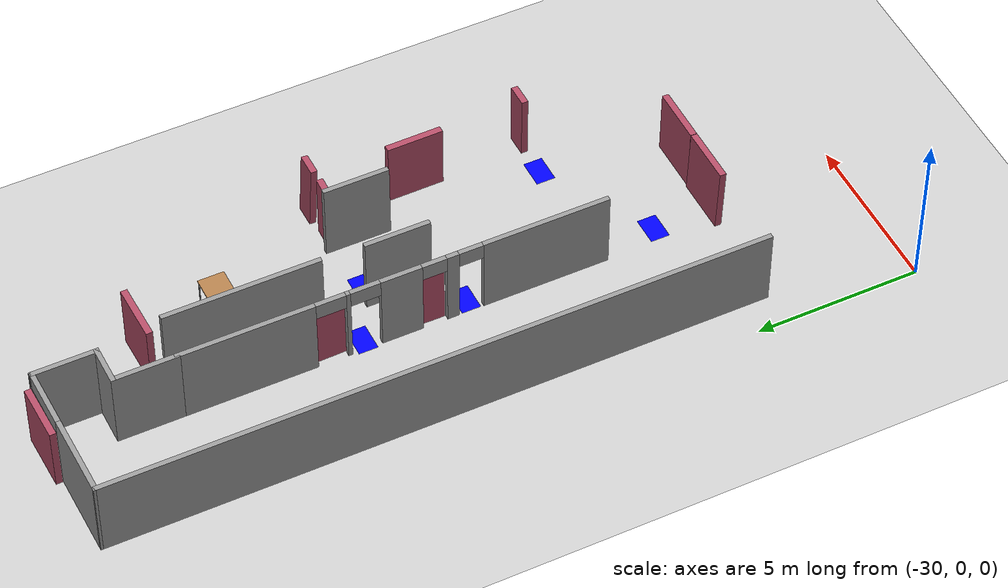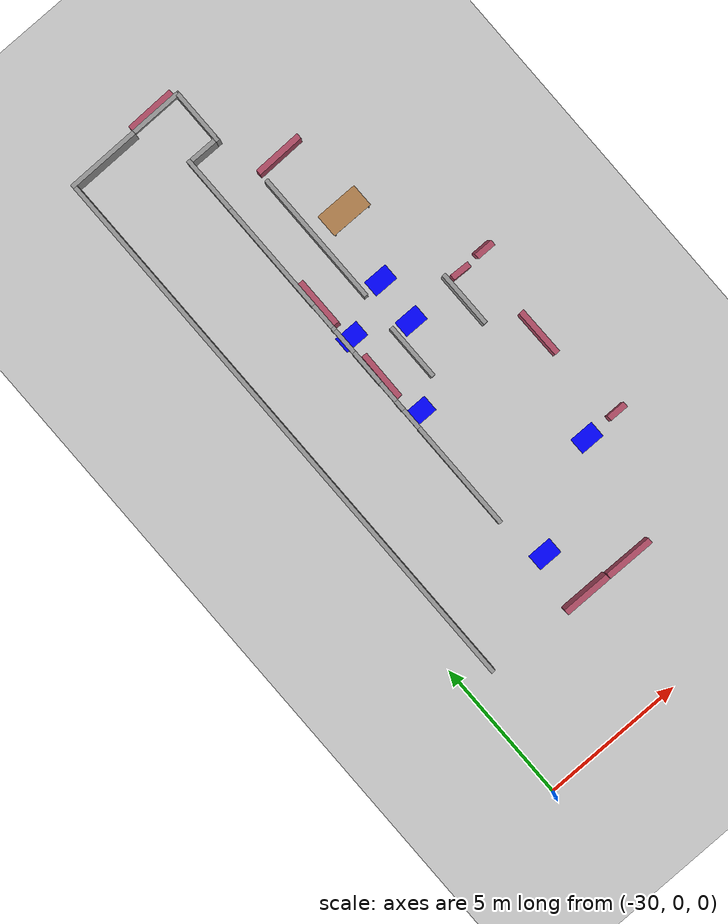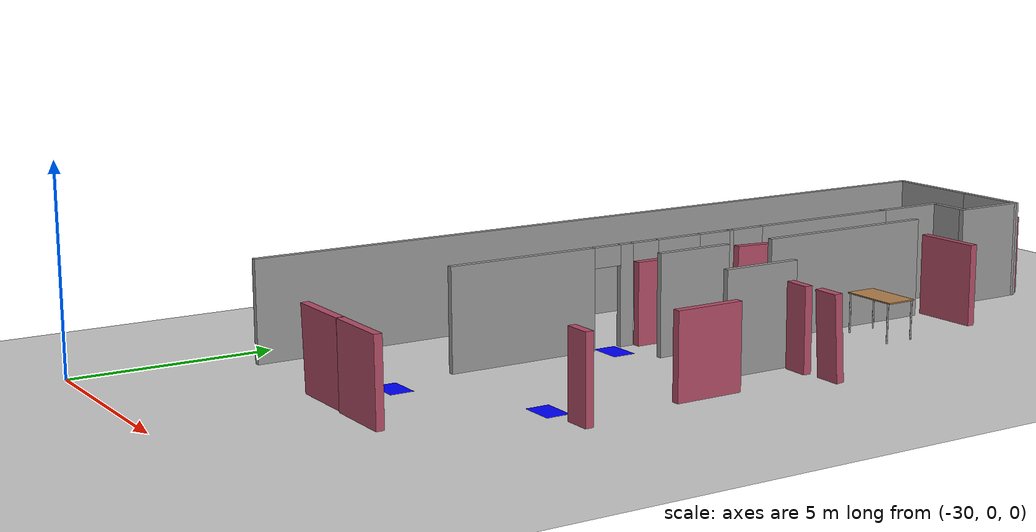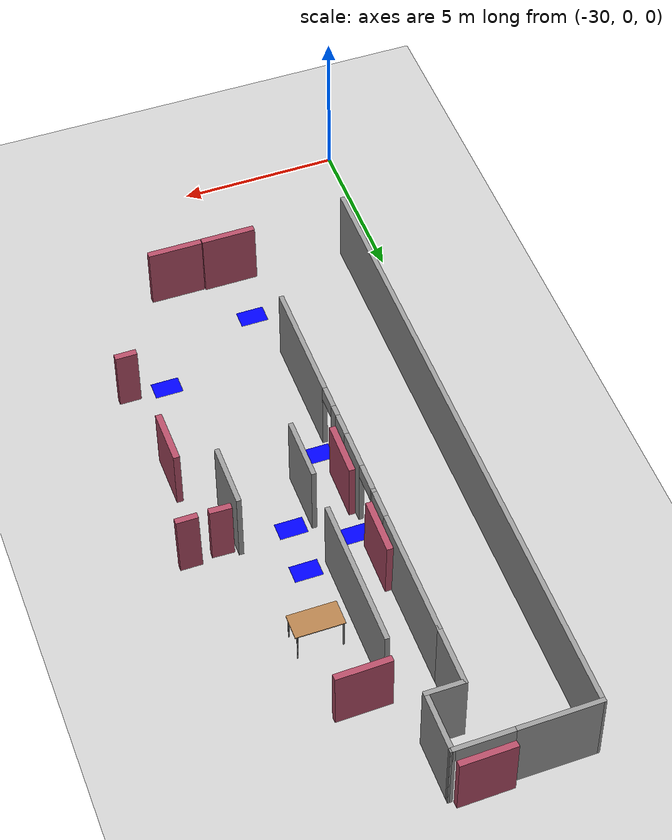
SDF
<sdf version="1.6">
 <world name="default">
  <model name="ground_plane">
   <static>1</static>
   <link name="link">
    <collision name="collision">
     <geometry><plane><normal>0 0 1</normal><size>100 100</size></plane></geometry>
     <surface><friction><ode><mu>100</mu><mu2>50</mu2></ode></friction></surface>
    </collision>
    <visual name="visual">
     <cast_shadows>0</cast_shadows>
     <geometry><plane><normal>0 0 1</normal><size>100 100</size></plane></geometry>
     <material>
      <script><uri>file://media/materials/scripts/gazebo.material</uri><name>Gazebo/Grey</name></script>
     </material>
    </visual>
   </link>
  </model>
  <model name="fin_se1f1.sdf">
   <pose>1.8125 -2.2901 0 0 -0 0</pose>
   <link name="Wall_0">
    <collision name="Wall_0_Collision">
     <geometry><box><size>20 0.15 2.5</size></box></geometry>
     <pose>0 0 1.25 0 -0 0</pose>
    </collision>
    <visual name="Wall_0_Visual">
     <pose>0 0 1.25 0 -0 0</pose>
     <geometry><box><size>20 0.15 2.5</size></box></geometry>
     <material>
      <script><uri>file://media/materials/scripts/gazebo.material</uri><name>Gazebo/Grey</name></script>
      <ambient>1 1 1 1</ambient>
     </material>
     <meta><layer>0</layer></meta>
    </visual>
    <pose>-30.7496 16.4496 0 0 0 -1.5708</pose>
   </link>
   <link name="Wall_114">
    <collision name="Wall_114_Collision">
     <geometry><box><size>2 0.15 2.5</size></box></geometry>
     <pose>0 0 1.25 0 -0 0</pose>
    </collision>
    <visual name="Wall_114_Visual">
     <pose>0 0 1.25 0 -0 0</pose>
     <geometry><box><size>2 0.15 2.5</size></box></geometry>
     <material>
      <script><uri>file://media/materials/scripts/gazebo.material</uri><name>Gazebo/Grey</name></script>
      <ambient>1 1 1 1</ambient>
     </material>
     <meta><layer>0</layer></meta>
    </visual>
    <pose>-26.1645 15.6146 0 0 -0 1.5708</pose>
   </link>
   <link name="Wall_116">
    <collision name="Wall_116_Collision">
     <geometry><box><size>2 0.15 2.5</size></box></geometry>
     <pose>0 0 1.25 0 -0 0</pose>
    </collision>
    <visual name="Wall_116_Visual">
     <pose>0 0 1.25 0 -0 0</pose>
     <geometry><box><size>2 0.15 2.5</size></box></geometry>
     <material>
      <script><uri>file://media/materials/scripts/gazebo.material</uri><name>Gazebo/Grey</name></script>
      <ambient>1 1 1 1</ambient>
     </material>
     <meta><layer>0</layer></meta>
    </visual>
    <pose>-23.8638 15.7977 0 0 0 -1.5708</pose>
   </link>
   <link name="Wall_23">
    <collision name="Wall_23_Collision">
     <geometry><box><size>2 0.15 2.5</size></box></geometry>
     <pose>0 0 1.25 0 -0 0</pose>
    </collision>
    <visual name="Wall_23_Visual">
     <pose>0 0 1.25 0 -0 0</pose>
     <geometry><box><size>2 0.15 2.5</size></box></geometry>
     <material>
      <script><uri>file://media/materials/scripts/gazebo.material</uri><name>Gazebo/Grey</name></script>
      <ambient>1 1 1 1</ambient>
     </material>
     <meta><layer>0</layer></meta>
    </visual>
    <pose>-27.5496 23.6496 0 0 -0 1.5708</pose>
   </link>
   <link name="Wall_24">
    <collision name="Wall_24_Collision">
     <geometry><box><size>1.25 0.15 2.5</size></box></geometry>
     <pose>0 0 1.25 0 -0 0</pose>
    </collision>
    <visual name="Wall_24_Visual">
     <pose>0 0 1.25 0 -0 0</pose>
     <geometry><box><size>1.25 0.15 2.5</size></box></geometry>
     <material>
      <script><uri>file://media/materials/scripts/gazebo.material</uri><name>Gazebo/Grey</name></script>
      <ambient>1 1 1 1</ambient>
     </material>
     <meta><layer>0</layer></meta>
    </visual>
    <pose>-26.9996 24.5746 0 0 -0 0</pose>
   </link>
   <link name="Wall_25">
    <collision name="Wall_25_Collision">
     <geometry><box><size>2 0.15 2.5</size></box></geometry>
     <pose>0 0 1.25 0 -0 0</pose>
    </collision>
    <visual name="Wall_25_Visual">
     <pose>0 0 1.25 0 -0 0</pose>
     <geometry><box><size>2 0.15 2.5</size></box></geometry>
     <material>
      <script><uri>file://media/materials/scripts/gazebo.material</uri><name>Gazebo/Grey</name></script>
      <ambient>1 1 1 1</ambient>
     </material>
     <meta><layer>0</layer></meta>
    </visual>
    <pose>-26.4496 25.4996 0 0 -0 1.5708</pose>
   </link>
   <link name="Wall_27">
    <pose>-28.5996 26.3996 0 0 0 -3.12996</pose>
    <visual name="Wall_27_Visual_0">
     <pose>-2.20066 0 1.25 0 -0 0</pose>
     <geometry><box><size>0.048973 0.15 2.5</size></box></geometry>
     <material>
      <script><uri>file://media/materials/scripts/gazebo.material</uri><name>Gazebo/Grey</name></script>
      <ambient>1 1 1 1</ambient>
     </material>
     <meta><layer>0</layer></meta>
    </visual>
    <collision name="Wall_27_Collision_0">
     <geometry><box><size>0.048973 0.15 2.5</size></box></geometry>
     <pose>-2.20066 0 1.25 0 -0 0</pose>
    </collision>
    <visual name="Wall_27_Visual_1">
     <pose>0.939694 0 1.25 0 -0 0</pose>
     <geometry><box><size>2.5709 0.15 2.5</size></box></geometry>
     <material>
      <script><uri>file://media/materials/scripts/gazebo.material</uri><name>Gazebo/Grey</name></script>
      <ambient>1 1 1 1</ambient>
     </material>
     <meta><layer>0</layer></meta>
    </visual>
    <collision name="Wall_27_Collision_1">
     <geometry><box><size>2.5709 0.15 2.5</size></box></geometry>
     <pose>0.939694 0 1.25 0 -0 0</pose>
    </collision>
    <visual name="Wall_27_Visual_2">
     <pose>-1.26096 0 2.25 0 -0 0</pose>
     <geometry><box><size>1.83041 0.15 0.5</size></box></geometry>
     <material>
      <script><uri>file://media/materials/scripts/gazebo.material</uri><name>Gazebo/Grey</name></script>
      <ambient>1 1 1 1</ambient>
     </material>
     <meta><layer>0</layer></meta>
    </visual>
    <collision name="Wall_27_Collision_2">
     <geometry><box><size>1.83041 0.15 0.5</size></box></geometry>
     <pose>-1.26096 0 2.25 0 -0 0</pose>
    </collision>
   </link>
   <link name="Wall_29">
    <pose>-27.5496 16.2996 0 0 0 -1.5708</pose>
    <visual name="Wall_29_Visual_0">
     <pose>-4.45394 0 1.25 0 -0 0</pose>
     <geometry><box><size>4.09211 0.15 2.5</size></box></geometry>
     <material>
      <script><uri>file://media/materials/scripts/gazebo.material</uri><name>Gazebo/Grey</name></script>
      <ambient>1 1 1 1</ambient>
     </material>
     <meta><layer>0</layer></meta>
    </visual>
    <collision name="Wall_29_Collision_0">
     <geometry><box><size>4.09211 0.15 2.5</size></box></geometry>
     <pose>-4.45394 0 1.25 0 -0 0</pose>
    </collision>
    <visual name="Wall_29_Visual_1">
     <pose>-1.44499 0 1.25 0 -0 0</pose>
     <geometry><box><size>0.125793 0.15 2.5</size></box></geometry>
     <material>
      <script><uri>file://media/materials/scripts/gazebo.material</uri><name>Gazebo/Grey</name></script>
      <ambient>1 1 1 1</ambient>
     </material>
     <meta><layer>0</layer></meta>
    </visual>
    <collision name="Wall_29_Collision_1">
     <geometry><box><size>0.125793 0.15 2.5</size></box></geometry>
     <pose>-1.44499 0 1.25 0 -0 0</pose>
    </collision>
    <visual name="Wall_29_Visual_2">
     <pose>0.143983 0 1.25 0 -0 0</pose>
     <geometry><box><size>1.25215 0.15 2.5</size></box></geometry>
     <material>
      <script><uri>file://media/materials/scripts/gazebo.material</uri><name>Gazebo/Grey</name></script>
      <ambient>1 1 1 1</ambient>
     </material>
     <meta><layer>0</layer></meta>
    </visual>
    <collision name="Wall_29_Collision_2">
     <geometry><box><size>1.25215 0.15 2.5</size></box></geometry>
     <pose>0.143983 0 1.25 0 -0 0</pose>
    </collision>
    <visual name="Wall_29_Visual_3">
     <pose>1.69273 0 1.25 0 -0 0</pose>
     <geometry><box><size>0.367155 0.15 2.5</size></box></geometry>
     <material>
      <script><uri>file://media/materials/scripts/gazebo.material</uri><name>Gazebo/Grey</name></script>
      <ambient>1 1 1 1</ambient>
     </material>
     <meta><layer>0</layer></meta>
    </visual>
    <collision name="Wall_29_Collision_3">
     <geometry><box><size>0.367155 0.15 2.5</size></box></geometry>
     <pose>1.69273 0 1.25 0 -0 0</pose>
    </collision>
    <visual name="Wall_29_Visual_4">
     <pose>4.5577 0 1.25 0 -0 0</pose>
     <geometry><box><size>3.8846 0.15 2.5</size></box></geometry>
     <material>
      <script><uri>file://media/materials/scripts/gazebo.material</uri><name>Gazebo/Grey</name></script>
      <ambient>1 1 1 1</ambient>
     </material>
     <meta><layer>0</layer></meta>
    </visual>
    <collision name="Wall_29_Collision_4">
     <geometry><box><size>3.8846 0.15 2.5</size></box></geometry>
     <pose>4.5577 0 1.25 0 -0 0</pose>
    </collision>
    <visual name="Wall_29_Visual_5">
     <pose>-1.95789 0 2.25 0 -0 0</pose>
     <geometry><box><size>0.9 0.15 0.5</size></box></geometry>
     <material>
      <script><uri>file://media/materials/scripts/gazebo.material</uri><name>Gazebo/Grey</name></script>
      <ambient>1 1 1 1</ambient>
     </material>
     <meta><layer>0</layer></meta>
    </visual>
    <collision name="Wall_29_Collision_5">
     <geometry><box><size>0.9 0.15 0.5</size></box></geometry>
     <pose>-1.95789 0 2.25 0 -0 0</pose>
    </collision>
    <visual name="Wall_29_Visual_6">
     <pose>-0.932093 0 2.25 0 -0 0</pose>
     <geometry><box><size>0.9 0.15 0.5</size></box></geometry>
     <material>
      <script><uri>file://media/materials/scripts/gazebo.material</uri><name>Gazebo/Grey</name></script>
      <ambient>1 1 1 1</ambient>
     </material>
     <meta><layer>0</layer></meta>
    </visual>
    <collision name="Wall_29_Collision_6">
     <geometry><box><size>0.9 0.15 0.5</size></box></geometry>
     <pose>-0.932093 0 2.25 0 -0 0</pose>
    </collision>
    <visual name="Wall_29_Visual_7">
     <pose>1.1396 0 2.25 0 -0 0</pose>
     <geometry><box><size>0.739091 0.15 0.5</size></box></geometry>
     <material>
      <script><uri>file://media/materials/scripts/gazebo.material</uri><name>Gazebo/Grey</name></script>
      <ambient>1 1 1 1</ambient>
     </material>
     <meta><layer>0</layer></meta>
    </visual>
    <collision name="Wall_29_Collision_7">
     <geometry><box><size>0.739091 0.15 0.5</size></box></geometry>
     <pose>1.1396 0 2.25 0 -0 0</pose>
    </collision>
    <visual name="Wall_29_Visual_8">
     <pose>2.24585 0 2.25 0 -0 0</pose>
     <geometry><box><size>0.739091 0.15 0.5</size></box></geometry>
     <material>
      <script><uri>file://media/materials/scripts/gazebo.material</uri><name>Gazebo/Grey</name></script>
      <ambient>1 1 1 1</ambient>
     </material>
     <meta><layer>0</layer></meta>
    </visual>
    <collision name="Wall_29_Collision_8">
     <geometry><box><size>0.739091 0.15 0.5</size></box></geometry>
     <pose>2.24585 0 2.25 0 -0 0</pose>
    </collision>
   </link>
   <link name="Wall_67">
    <collision name="Wall_67_Collision">
     <geometry><box><size>4.75 0.15 2.5</size></box></geometry>
     <pose>0 0 1.25 0 -0 0</pose>
    </collision>
    <visual name="Wall_67_Visual">
     <pose>0 0 1.25 0 -0 0</pose>
     <geometry><box><size>4.75 0.15 2.5</size></box></geometry>
     <material>
      <script><uri>file://media/materials/scripts/gazebo.material</uri><name>Gazebo/Grey</name></script>
      <ambient>1 1 1 1</ambient>
     </material>
     <meta><layer>0</layer></meta>
    </visual>
    <pose>-26.1152 20.2344 0 0 0 -1.5708</pose>
   </link>
   <static>1</static>
  </model>
  <model name="table">
   <static>1</static>
   <link name="link">
    <collision name="surface">
     <pose>0 0 1 0 -0 0</pose>
     <geometry><box><size>1.5 0.8 0.03</size></box></geometry>
     <surface><friction><ode><mu>0.6</mu><mu2>0.6</mu2></ode></friction></surface>
    </collision>
    <visual name="visual1">
     <pose>0 0 1 0 -0 0</pose>
     <geometry><box><size>1.5 0.8 0.03</size></box></geometry>
     <material>
      <script><uri>file://media/materials/scripts/gazebo.material</uri><name>Gazebo/Wood</name></script>
     </material>
    </visual>
    <collision name="front_left_leg">
     <pose>0.68 0.38 0.5 0 -0 0</pose>
     <geometry><cylinder><radius>0.02</radius><length>1</length></cylinder></geometry>
    </collision>
    <visual name="front_left_leg">
     <pose>0.68 0.38 0.5 0 -0 0</pose>
     <geometry><cylinder><radius>0.02</radius><length>1</length></cylinder></geometry>
     <material>
      <script><uri>file://media/materials/scripts/gazebo.material</uri><name>Gazebo/Grey</name></script>
     </material>
    </visual>
    <collision name="front_right_leg">
     <pose>0.68 -0.38 0.5 0 -0 0</pose>
     <geometry><cylinder><radius>0.02</radius><length>1</length></cylinder></geometry>
    </collision>
    <visual name="front_right_leg">
     <pose>0.68 -0.38 0.5 0 -0 0</pose>
     <geometry><cylinder><radius>0.02</radius><length>1</length></cylinder></geometry>
     <material>
      <script><uri>file://media/materials/scripts/gazebo.material</uri><name>Gazebo/Grey</name></script>
     </material>
    </visual>
    <collision name="back_right_leg">
     <pose>-0.68 -0.38 0.5 0 -0 0</pose>
     <geometry><cylinder><radius>0.02</radius><length>1</length></cylinder></geometry>
    </collision>
    <visual name="back_right_leg">
     <pose>-0.68 -0.38 0.5 0 -0 0</pose>
     <geometry><cylinder><radius>0.02</radius><length>1</length></cylinder></geometry>
     <material>
      <script><uri>file://media/materials/scripts/gazebo.material</uri><name>Gazebo/Grey</name></script>
     </material>
    </visual>
    <collision name="back_left_leg">
     <pose>-0.68 0.38 0.5 0 -0 0</pose>
     <geometry><cylinder><radius>0.02</radius><length>1</length></cylinder></geometry>
    </collision>
    <visual name="back_left_leg">
     <pose>-0.68 0.38 0.5 0 -0 0</pose>
     <geometry><cylinder><radius>0.02</radius><length>1</length></cylinder></geometry>
     <material>
      <script><uri>file://media/materials/scripts/gazebo.material</uri><name>Gazebo/Grey</name></script>
     </material>
    </visual>
   </link>
   <pose>-23.0593 18.0717 0 0 -0 0</pose>
  </model>
  <model name="doorOutside">
   <link name="link">
    <pose>0.155539 -0.366282 0.216958 0 -0 0</pose>
    <inertial>
     <mass>2.13199</mass>
     <inertia>
      <ixx>0.452656</ixx>
      <ixy>0</ixy>
      <ixz>0</ixz>
      <iyy>0.796738</iyy>
      <iyz>0</iyz>
      <izz>0.699414</izz>
     </inertia>
    </inertial>
    <visual name="visual">
     <geometry><box><size>1.71368 0.198843 2.05986</size></box></geometry>
     <material>
      <script><name>Gazebo/Grey</name><uri>file://media/materials/scripts/gazebo.material</uri></script>
      <ambient>0.7 0.3 0.4 1</ambient>
      <diffuse>0.7 0.7 0.7 1</diffuse>
      <specular>0.01 0.01 0.01 1</specular>
      <emissive>0 0 0 1</emissive>
      <shader type="vertex"><normal_map>__default__</normal_map></shader>
      <lighting>0</lighting>
     </material>
    </visual>
    <collision name="collision">
     <geometry><box><size>1.71368 0.198843 2.05986</size></box></geometry>
     <surface>
      <friction>
       <ode><mu>1</mu><mu2>1</mu2><fdir1>0 0 0</fdir1><slip1>0</slip1><slip2>0</slip2></ode>
       <torsional>
        <coefficient>1</coefficient>
        <patch_radius>0</patch_radius>
        <surface_radius>0</surface_radius>
        <use_patch_radius>1</use_patch_radius>
        <ode><slip>0</slip></ode>
       </torsional>
      </friction>
      <bounce><restitution_coefficient>0</restitution_coefficient><threshold>1e+06</threshold></bounce>
      <contact>
       <collide_without_contact>0</collide_without_contact>
       <collide_without_contact_bitmask>1</collide_without_contact_bitmask>
       <collide_bitmask>1</collide_bitmask>
       <ode>
        <soft_cfm>0</soft_cfm>
        <soft_erp>0.2</soft_erp>
        <kp>1e+13</kp>
        <kd>1</kd>
        <max_vel>0.01</max_vel>
        <min_depth>0</min_depth>
       </ode>
       <bullet>
        <split_impulse>1</split_impulse>
        <split_impulse_penetration_threshold>-0.01</split_impulse_penetration_threshold>
        <soft_cfm>0</soft_cfm>
        <soft_erp>0.2</soft_erp>
        <kp>1e+13</kp>
        <kd>1</kd>
       </bullet>
      </contact>
     </surface>
    </collision>
   </link>
   <static>1</static>
   <pose>-25.7598 24.6794 0.812972 0 -0 0.023128</pose>
  </model>
  <model name="doorOutside_clone">
   <link name="link">
    <pose>0.155539 -0.366282 0.216958 0 -0 0</pose>
    <inertial>
     <mass>2.13199</mass>
     <inertia>
      <ixx>0.452656</ixx>
      <ixy>0</ixy>
      <ixz>0</ixz>
      <iyy>0.796738</iyy>
      <iyz>0</iyz>
      <izz>0.699414</izz>
     </inertia>
    </inertial>
    <visual name="visual">
     <geometry><box><size>1.71368 0.198843 2.05986</size></box></geometry>
     <material>
      <script><name>Gazebo/Grey</name><uri>file://media/materials/scripts/gazebo.material</uri></script>
      <ambient>0.7 0.3 0.4 1</ambient>
      <diffuse>0.7 0.7 0.7 1</diffuse>
      <specular>0.01 0.01 0.01 1</specular>
      <emissive>0 0 0 1</emissive>
      <shader type="vertex"><normal_map>__default__</normal_map></shader>
      <lighting>0</lighting>
     </material>
    </visual>
    <collision name="collision">
     <geometry><box><size>1.71368 0.198843 2.05986</size></box></geometry>
     <surface>
      <friction>
       <ode><mu>1</mu><mu2>1</mu2><fdir1>0 0 0</fdir1><slip1>0</slip1><slip2>0</slip2></ode>
       <torsional>
        <coefficient>1</coefficient>
        <patch_radius>0</patch_radius>
        <surface_radius>0</surface_radius>
        <use_patch_radius>1</use_patch_radius>
        <ode><slip>0</slip></ode>
       </torsional>
      </friction>
      <bounce><restitution_coefficient>0</restitution_coefficient><threshold>1e+06</threshold></bounce>
      <contact>
       <collide_without_contact>0</collide_without_contact>
       <collide_without_contact_bitmask>1</collide_without_contact_bitmask>
       <collide_bitmask>1</collide_bitmask>
       <ode>
        <soft_cfm>0</soft_cfm>
        <soft_erp>0.2</soft_erp>
        <kp>1e+13</kp>
        <kd>1</kd>
        <max_vel>0.01</max_vel>
        <min_depth>0</min_depth>
       </ode>
       <bullet>
        <split_impulse>1</split_impulse>
        <split_impulse_penetration_threshold>-0.01</split_impulse_penetration_threshold>
        <soft_cfm>0</soft_cfm>
        <soft_erp>0.2</soft_erp>
        <kp>1e+13</kp>
        <kd>1</kd>
       </bullet>
      </contact>
     </surface>
    </collision>
   </link>
   <static>1</static>
   <pose>-23.6444 21.0534 0.812972 0 -0 0.023097</pose>
  </model>
  <model name="doorOutside_clone_8_clone_7_clone_2">
   <link name="link">
    <pose>0.155539 -0.366282 0.216958 0 -0 0</pose>
    <inertial>
     <mass>2.13199</mass>
     <inertia>
      <ixx>0.452656</ixx>
      <ixy>0</ixy>
      <ixz>0</ixz>
      <iyy>0.796738</iyy>
      <iyz>0</iyz>
      <izz>0.699414</izz>
     </inertia>
    </inertial>
    <visual name="visual">
     <geometry><box><size>1.71368 0.198843 2.05986</size></box></geometry>
     <material>
      <script><name>Gazebo/Grey</name><uri>file://media/materials/scripts/gazebo.material</uri></script>
      <ambient>0.7 0.3 0.4 1</ambient>
      <diffuse>0.7 0.7 0.7 1</diffuse>
      <specular>0.01 0.01 0.01 1</specular>
      <emissive>0 0 0 1</emissive>
      <shader type="vertex"><normal_map>__default__</normal_map></shader>
      <lighting>0</lighting>
     </material>
    </visual>
    <collision name="collision">
     <geometry><box><size>1.71368 0.198843 2.05986</size></box></geometry>
     <surface>
      <friction>
       <ode><mu>1</mu><mu2>1</mu2><fdir1>0 0 0</fdir1><slip1>0</slip1><slip2>0</slip2></ode>
       <torsional>
        <coefficient>1</coefficient>
        <patch_radius>0</patch_radius>
        <surface_radius>0</surface_radius>
        <use_patch_radius>1</use_patch_radius>
        <ode><slip>0</slip></ode>
       </torsional>
      </friction>
      <bounce><restitution_coefficient>0</restitution_coefficient><threshold>1e+06</threshold></bounce>
      <contact>
       <collide_without_contact>0</collide_without_contact>
       <collide_without_contact_bitmask>1</collide_without_contact_bitmask>
       <collide_bitmask>1</collide_bitmask>
       <ode>
        <soft_cfm>0</soft_cfm>
        <soft_erp>0.2</soft_erp>
        <kp>1e+13</kp>
        <kd>1</kd>
        <max_vel>0.01</max_vel>
        <min_depth>0</min_depth>
       </ode>
       <bullet>
        <split_impulse>1</split_impulse>
        <split_impulse_penetration_threshold>-0.01</split_impulse_penetration_threshold>
        <soft_cfm>0</soft_cfm>
        <soft_erp>0.2</soft_erp>
        <kp>1e+13</kp>
        <kd>1</kd>
       </bullet>
      </contact>
     </surface>
    </collision>
   </link>
   <static>1</static>
   <pose>-23.5819 4.42818 0.814859 0.004083 -5e-06 -0.004333</pose>
  </model>
  <model name="doorOutside_clone_8_clone_7_clone_3">
   <link name="link">
    <pose>0.155539 -0.366282 0.216958 0 -0 0</pose>
    <inertial>
     <mass>2.13199</mass>
     <inertia>
      <ixx>0.452656</ixx>
      <ixy>0</ixy>
      <ixz>0</ixz>
      <iyy>0.796738</iyy>
      <iyz>0</iyz>
      <izz>0.699414</izz>
     </inertia>
    </inertial>
    <visual name="visual">
     <geometry><box><size>1.71368 0.198843 2.05986</size></box></geometry>
     <material>
      <script><name>Gazebo/Grey</name><uri>file://media/materials/scripts/gazebo.material</uri></script>
      <ambient>0.7 0.3 0.4 1</ambient>
      <diffuse>0.7 0.7 0.7 1</diffuse>
      <specular>0.01 0.01 0.01 1</specular>
      <emissive>0 0 0 1</emissive>
      <shader type="vertex"><normal_map>__default__</normal_map></shader>
      <lighting>0</lighting>
     </material>
    </visual>
    <collision name="collision">
     <geometry><box><size>1.71368 0.198843 2.05986</size></box></geometry>
     <surface>
      <friction>
       <ode><mu>1</mu><mu2>1</mu2><fdir1>0 0 0</fdir1><slip1>0</slip1><slip2>0</slip2></ode>
       <torsional>
        <coefficient>1</coefficient>
        <patch_radius>0</patch_radius>
        <surface_radius>0</surface_radius>
        <use_patch_radius>1</use_patch_radius>
        <ode><slip>0</slip></ode>
       </torsional>
      </friction>
      <bounce><restitution_coefficient>0</restitution_coefficient><threshold>1e+06</threshold></bounce>
      <contact>
       <collide_without_contact>0</collide_without_contact>
       <collide_without_contact_bitmask>1</collide_without_contact_bitmask>
       <collide_bitmask>1</collide_bitmask>
       <ode>
        <soft_cfm>0</soft_cfm>
        <soft_erp>0.2</soft_erp>
        <kp>1e+13</kp>
        <kd>1</kd>
        <max_vel>0.01</max_vel>
        <min_depth>0</min_depth>
       </ode>
       <bullet>
        <split_impulse>1</split_impulse>
        <split_impulse_penetration_threshold>-0.01</split_impulse_penetration_threshold>
        <soft_cfm>0</soft_cfm>
        <soft_erp>0.2</soft_erp>
        <kp>1e+13</kp>
        <kd>1</kd>
       </bullet>
      </contact>
     </surface>
    </collision>
   </link>
   <static>1</static>
   <pose>-25.3182 4.45907 0.825573 0.027736 -0 0</pose>
  </model>
  <model name="intersection">
   <link name="link">
    <inertial>
     <mass>0.0352517</mass>
     <inertia>
      <ixx>0.000997067</ixx>
      <ixy>0</ixy>
      <ixz>0</ixz>
      <iyy>0.00220147</iyy>
      <iyz>0</iyz>
      <izz>0.0031692</izz>
     </inertia>
    </inertial>
    <visual name="visual">
     <geometry><box><size>0.862743 0.578289 1e-06</size></box></geometry>
     <material>
      <script><name>Gazebo/Grey</name><uri>file://media/materials/scripts/gazebo.material</uri></script>
      <ambient>0 0 1 1</ambient>
      <diffuse>0 0 1 1</diffuse>
      <specular>0 0 1 1</specular>
      <emissive>0 0 1 1</emissive>
      <shader type="vertex"><normal_map>__default__</normal_map></shader>
     </material>
    </visual>
    <collision name="collision">
     <geometry><box><size>0.862743 0.578289 0.000477</size></box></geometry>
     <surface>
      <friction>
       <ode><mu>1</mu><mu2>1</mu2><fdir1>0 0 0</fdir1><slip1>0</slip1><slip2>0</slip2></ode>
       <torsional>
        <coefficient>1</coefficient>
        <patch_radius>0</patch_radius>
        <surface_radius>0</surface_radius>
        <use_patch_radius>1</use_patch_radius>
        <ode><slip>0</slip></ode>
       </torsional>
      </friction>
      <bounce><restitution_coefficient>0</restitution_coefficient><threshold>1e+06</threshold></bounce>
      <contact>
       <collide_without_contact>0</collide_without_contact>
       <collide_without_contact_bitmask>1</collide_without_contact_bitmask>
       <collide_bitmask>1</collide_bitmask>
       <ode>
        <soft_cfm>0</soft_cfm>
        <soft_erp>0.2</soft_erp>
        <kp>1e+13</kp>
        <kd>1</kd>
        <max_vel>0.01</max_vel>
        <min_depth>0</min_depth>
       </ode>
       <bullet>
        <split_impulse>1</split_impulse>
        <split_impulse_penetration_threshold>-0.01</split_impulse_penetration_threshold>
        <soft_cfm>0</soft_cfm>
        <soft_erp>0.2</soft_erp>
        <kp>1e+13</kp>
        <kd>1</kd>
       </bullet>
      </contact>
     </surface>
    </collision>
   </link>
   <static>1</static>
   <pose>-25.4529 14.9492 0 0 -0 0</pose>
  </model>
  <model name="intersection_0">
   <link name="link">
    <inertial>
     <mass>0.0352517</mass>
     <inertia>
      <ixx>0.000997067</ixx>
      <ixy>0</ixy>
      <ixz>0</ixz>
      <iyy>0.00220147</iyy>
      <iyz>0</iyz>
      <izz>0.0031692</izz>
     </inertia>
    </inertial>
    <visual name="visual">
     <geometry><box><size>0.862743 0.578289 1e-06</size></box></geometry>
     <material>
      <script><name>Gazebo/Grey</name><uri>file://media/materials/scripts/gazebo.material</uri></script>
      <ambient>0 0 1 1</ambient>
      <diffuse>0 0 1 1</diffuse>
      <specular>0 0 1 1</specular>
      <emissive>0 0 1 1</emissive>
      <shader type="vertex"><normal_map>__default__</normal_map></shader>
     </material>
    </visual>
    <collision name="collision">
     <geometry><box><size>0.862743 0.578289 0.000477</size></box></geometry>
     <surface>
      <friction>
       <ode><mu>1</mu><mu2>1</mu2><fdir1>0 0 0</fdir1><slip1>0</slip1><slip2>0</slip2></ode>
       <torsional>
        <coefficient>1</coefficient>
        <patch_radius>0</patch_radius>
        <surface_radius>0</surface_radius>
        <use_patch_radius>1</use_patch_radius>
        <ode><slip>0</slip></ode>
       </torsional>
      </friction>
      <bounce><restitution_coefficient>0</restitution_coefficient><threshold>1e+06</threshold></bounce>
      <contact>
       <collide_without_contact>0</collide_without_contact>
       <collide_without_contact_bitmask>1</collide_without_contact_bitmask>
       <collide_bitmask>1</collide_bitmask>
       <ode>
        <soft_cfm>0</soft_cfm>
        <soft_erp>0.2</soft_erp>
        <kp>1e+13</kp>
        <kd>1</kd>
        <max_vel>0.01</max_vel>
        <min_depth>0</min_depth>
       </ode>
       <bullet>
        <split_impulse>1</split_impulse>
        <split_impulse_penetration_threshold>-0.01</split_impulse_penetration_threshold>
        <soft_cfm>0</soft_cfm>
        <soft_erp>0.2</soft_erp>
        <kp>1e+13</kp>
        <kd>1</kd>
       </bullet>
      </contact>
     </surface>
    </collision>
   </link>
   <static>1</static>
   <pose>-25.3659 11.7621 0 0 -0 0</pose>
  </model>
  <model name="intersection_1">
   <link name="link">
    <inertial>
     <mass>0.0352517</mass>
     <inertia>
      <ixx>0.000997067</ixx>
      <ixy>0</ixy>
      <ixz>0</ixz>
      <iyy>0.00220147</iyy>
      <iyz>0</iyz>
      <izz>0.0031692</izz>
     </inertia>
    </inertial>
    <visual name="visual">
     <geometry><box><size>0.862743 0.578289 1e-06</size></box></geometry>
     <material>
      <script><name>Gazebo/Grey</name><uri>file://media/materials/scripts/gazebo.material</uri></script>
      <ambient>0 0 1 1</ambient>
      <diffuse>0 0 1 1</diffuse>
      <specular>0 0 1 1</specular>
      <emissive>0 0 1 1</emissive>
      <shader type="vertex"><normal_map>__default__</normal_map></shader>
     </material>
    </visual>
    <collision name="collision">
     <geometry><box><size>0.862743 0.578289 0.000477</size></box></geometry>
     <surface>
      <friction>
       <ode><mu>1</mu><mu2>1</mu2><fdir1>0 0 0</fdir1><slip1>0</slip1><slip2>0</slip2></ode>
       <torsional>
        <coefficient>1</coefficient>
        <patch_radius>0</patch_radius>
        <surface_radius>0</surface_radius>
        <use_patch_radius>1</use_patch_radius>
        <ode><slip>0</slip></ode>
       </torsional>
      </friction>
      <bounce><restitution_coefficient>0</restitution_coefficient><threshold>1e+06</threshold></bounce>
      <contact>
       <collide_without_contact>0</collide_without_contact>
       <collide_without_contact_bitmask>1</collide_without_contact_bitmask>
       <collide_bitmask>1</collide_bitmask>
       <ode>
        <soft_cfm>0</soft_cfm>
        <soft_erp>0.2</soft_erp>
        <kp>1e+13</kp>
        <kd>1</kd>
        <max_vel>0.01</max_vel>
        <min_depth>0</min_depth>
       </ode>
       <bullet>
        <split_impulse>1</split_impulse>
        <split_impulse_penetration_threshold>-0.01</split_impulse_penetration_threshold>
        <soft_cfm>0</soft_cfm>
        <soft_erp>0.2</soft_erp>
        <kp>1e+13</kp>
        <kd>1</kd>
       </bullet>
      </contact>
     </surface>
    </collision>
   </link>
   <static>1</static>
   <pose>-21.9217 7.70918 0 0 -0 0</pose>
  </model>
  <model name="intersection_2">
   <link name="link">
    <inertial>
     <mass>0.0352517</mass>
     <inertia>
      <ixx>0.000997067</ixx>
      <ixy>0</ixy>
      <ixz>0</ixz>
      <iyy>0.00220147</iyy>
      <iyz>0</iyz>
      <izz>0.0031692</izz>
     </inertia>
    </inertial>
    <visual name="visual">
     <geometry><box><size>0.862743 0.578289 1e-06</size></box></geometry>
     <material>
      <script><name>Gazebo/Grey</name><uri>file://media/materials/scripts/gazebo.material</uri></script>
      <ambient>0 0 1 1</ambient>
      <diffuse>0 0 1 1</diffuse>
      <specular>0 0 1 1</specular>
      <emissive>0 0 1 1</emissive>
      <shader type="vertex"><normal_map>__default__</normal_map></shader>
     </material>
    </visual>
    <collision name="collision">
     <geometry><box><size>0.862743 0.578289 0.000477</size></box></geometry>
     <surface>
      <friction>
       <ode><mu>1</mu><mu2>1</mu2><fdir1>0 0 0</fdir1><slip1>0</slip1><slip2>0</slip2></ode>
       <torsional>
        <coefficient>1</coefficient>
        <patch_radius>0</patch_radius>
        <surface_radius>0</surface_radius>
        <use_patch_radius>1</use_patch_radius>
        <ode><slip>0</slip></ode>
       </torsional>
      </friction>
      <bounce><restitution_coefficient>0</restitution_coefficient><threshold>1e+06</threshold></bounce>
      <contact>
       <collide_without_contact>0</collide_without_contact>
       <collide_without_contact_bitmask>1</collide_without_contact_bitmask>
       <collide_bitmask>1</collide_bitmask>
       <ode>
        <soft_cfm>0</soft_cfm>
        <soft_erp>0.2</soft_erp>
        <kp>1e+13</kp>
        <kd>1</kd>
        <max_vel>0.01</max_vel>
        <min_depth>0</min_depth>
       </ode>
       <bullet>
        <split_impulse>1</split_impulse>
        <split_impulse_penetration_threshold>-0.01</split_impulse_penetration_threshold>
        <soft_cfm>0</soft_cfm>
        <soft_erp>0.2</soft_erp>
        <kp>1e+13</kp>
        <kd>1</kd>
       </bullet>
      </contact>
     </surface>
    </collision>
   </link>
   <static>1</static>
   <pose>-25.3153 5.80735 0 0 -0 0</pose>
  </model>
  <model name="intersection_3">
   <link name="link">
    <inertial>
     <mass>0.0352517</mass>
     <inertia>
      <ixx>0.000997067</ixx>
      <ixy>0</ixy>
      <ixz>0</ixz>
      <iyy>0.00220147</iyy>
      <iyz>0</iyz>
      <izz>0.0031692</izz>
     </inertia>
    </inertial>
    <visual name="visual">
     <geometry><box><size>0.862743 0.578289 1e-06</size></box></geometry>
     <material>
      <script><name>Gazebo/Grey</name><uri>file://media/materials/scripts/gazebo.material</uri></script>
      <ambient>0 0 1 1</ambient>
      <diffuse>0 0 1 1</diffuse>
      <specular>0 0 1 1</specular>
      <emissive>0 0 1 1</emissive>
      <shader type="vertex"><normal_map>__default__</normal_map></shader>
     </material>
    </visual>
    <collision name="collision">
     <geometry><box><size>0.862743 0.578289 0.000477</size></box></geometry>
     <surface>
      <friction>
       <ode><mu>1</mu><mu2>1</mu2><fdir1>0 0 0</fdir1><slip1>0</slip1><slip2>0</slip2></ode>
       <torsional>
        <coefficient>1</coefficient>
        <patch_radius>0</patch_radius>
        <surface_radius>0</surface_radius>
        <use_patch_radius>1</use_patch_radius>
        <ode><slip>0</slip></ode>
       </torsional>
      </friction>
      <bounce><restitution_coefficient>0</restitution_coefficient><threshold>1e+06</threshold></bounce>
      <contact>
       <collide_without_contact>0</collide_without_contact>
       <collide_without_contact_bitmask>1</collide_without_contact_bitmask>
       <collide_bitmask>1</collide_bitmask>
       <ode>
        <soft_cfm>0</soft_cfm>
        <soft_erp>0.2</soft_erp>
        <kp>1e+13</kp>
        <kd>1</kd>
        <max_vel>0.01</max_vel>
        <min_depth>0</min_depth>
       </ode>
       <bullet>
        <split_impulse>1</split_impulse>
        <split_impulse_penetration_threshold>-0.01</split_impulse_penetration_threshold>
        <soft_cfm>0</soft_cfm>
        <soft_erp>0.2</soft_erp>
        <kp>1e+13</kp>
        <kd>1</kd>
       </bullet>
      </contact>
     </surface>
    </collision>
   </link>
   <static>1</static>
   <pose>-23.599 15.7 0 0 -0 0</pose>
  </model>
  <model name="intersection_4">
   <link name="link">
    <inertial>
     <mass>0.0352517</mass>
     <inertia>
      <ixx>0.000997067</ixx>
      <ixy>0</ixy>
      <ixz>0</ixz>
      <iyy>0.00220147</iyy>
      <iyz>0</iyz>
      <izz>0.0031692</izz>
     </inertia>
    </inertial>
    <visual name="visual">
     <geometry><box><size>0.862743 0.578289 1e-06</size></box></geometry>
     <material>
      <script><name>Gazebo/Grey</name><uri>file://media/materials/scripts/gazebo.material</uri></script>
      <ambient>0 0 1 1</ambient>
      <diffuse>0 0 1 1</diffuse>
      <specular>0 0 1 1</specular>
      <emissive>0 0 1 1</emissive>
      <shader type="vertex"><normal_map>__default__</normal_map></shader>
     </material>
    </visual>
    <collision name="collision">
     <geometry><box><size>0.862743 0.578289 0.000477</size></box></geometry>
     <surface>
      <friction>
       <ode><mu>1</mu><mu2>1</mu2><fdir1>0 0 0</fdir1><slip1>0</slip1><slip2>0</slip2></ode>
       <torsional>
        <coefficient>1</coefficient>
        <patch_radius>0</patch_radius>
        <surface_radius>0</surface_radius>
        <use_patch_radius>1</use_patch_radius>
        <ode><slip>0</slip></ode>
       </torsional>
      </friction>
      <bounce><restitution_coefficient>0</restitution_coefficient><threshold>1e+06</threshold></bounce>
      <contact>
       <collide_without_contact>0</collide_without_contact>
       <collide_without_contact_bitmask>1</collide_without_contact_bitmask>
       <collide_bitmask>1</collide_bitmask>
       <ode>
        <soft_cfm>0</soft_cfm>
        <soft_erp>0.2</soft_erp>
        <kp>1e+13</kp>
        <kd>1</kd>
        <max_vel>0.01</max_vel>
        <min_depth>0</min_depth>
       </ode>
       <bullet>
        <split_impulse>1</split_impulse>
        <split_impulse_penetration_threshold>-0.01</split_impulse_penetration_threshold>
        <soft_cfm>0</soft_cfm>
        <soft_erp>0.2</soft_erp>
        <kp>1e+13</kp>
        <kd>1</kd>
       </bullet>
      </contact>
     </surface>
    </collision>
   </link>
   <static>1</static>
   <pose>-23.7055 14.1101 0 0 -0 0</pose>
  </model>
  <model name="doorOutside_2">
   <link name="link">
    <pose>0.155539 -0.366282 0.216958 0 -0 0</pose>
    <inertial>
     <mass>2.13199</mass>
     <inertia>
      <ixx>0.452656</ixx>
      <ixy>0</ixy>
      <ixz>0</ixz>
      <iyy>0.796738</iyy>
      <iyz>0</iyz>
      <izz>0.699414</izz>
     </inertia>
    </inertial>
    <visual name="visual">
     <geometry><box><size>1.71368 0.198843 2.05986</size></box></geometry>
     <material>
      <script><name>Gazebo/Grey</name><uri>file://media/materials/scripts/gazebo.material</uri></script>
      <ambient>0.7 0.3 0.4 1</ambient>
      <diffuse>0.7 0.7 0.7 1</diffuse>
      <specular>0.01 0.01 0.01 1</specular>
      <emissive>0 0 0 1</emissive>
      <shader type="vertex"><normal_map>__default__</normal_map></shader>
      <lighting>0</lighting>
     </material>
    </visual>
    <collision name="collision">
     <geometry><box><size>1.71368 0.198843 2.05986</size></box></geometry>
     <surface>
      <friction>
       <ode><mu>1</mu><mu2>1</mu2><fdir1>0 0 0</fdir1><slip1>0</slip1><slip2>0</slip2></ode>
       <torsional>
        <coefficient>1</coefficient>
        <patch_radius>0</patch_radius>
        <surface_radius>0</surface_radius>
        <use_patch_radius>1</use_patch_radius>
        <ode><slip>0</slip></ode>
       </torsional>
      </friction>
      <bounce><restitution_coefficient>0</restitution_coefficient><threshold>1e+06</threshold></bounce>
      <contact>
       <collide_without_contact>0</collide_without_contact>
       <collide_without_contact_bitmask>1</collide_without_contact_bitmask>
       <collide_bitmask>1</collide_bitmask>
       <ode>
        <soft_cfm>0</soft_cfm>
        <soft_erp>0.2</soft_erp>
        <kp>1e+13</kp>
        <kd>1</kd>
        <max_vel>0.01</max_vel>
        <min_depth>0</min_depth>
       </ode>
       <bullet>
        <split_impulse>1</split_impulse>
        <split_impulse_penetration_threshold>-0.01</split_impulse_penetration_threshold>
        <soft_cfm>0</soft_cfm>
        <soft_erp>0.2</soft_erp>
        <kp>1e+13</kp>
        <kd>1</kd>
       </bullet>
      </contact>
     </surface>
    </collision>
   </link>
   <static>0</static>
   <pose>-25.9289 16.1879 0.847921 0 0.035022 1.5708</pose>
  </model>
  <model name="doorOutside_2_clone">
   <link name="link">
    <pose>0.155539 -0.366282 0.216958 0 -0 0</pose>
    <inertial>
     <mass>2.13199</mass>
     <inertia>
      <ixx>0.452656</ixx>
      <ixy>0</ixy>
      <ixz>0</ixz>
      <iyy>0.796738</iyy>
      <iyz>0</iyz>
      <izz>0.699414</izz>
     </inertia>
    </inertial>
    <visual name="visual">
     <geometry><box><size>1.71368 0.198843 2.05986</size></box></geometry>
     <material>
      <script><name>Gazebo/Grey</name><uri>file://media/materials/scripts/gazebo.material</uri></script>
      <ambient>0.7 0.3 0.4 1</ambient>
      <diffuse>0.7 0.7 0.7 1</diffuse>
      <specular>0.01 0.01 0.01 1</specular>
      <emissive>0 0 0 1</emissive>
      <shader type="vertex"><normal_map>__default__</normal_map></shader>
      <lighting>0</lighting>
     </material>
    </visual>
    <collision name="collision">
     <geometry><box><size>1.71368 0.198843 2.05986</size></box></geometry>
     <surface>
      <friction>
       <ode><mu>1</mu><mu2>1</mu2><fdir1>0 0 0</fdir1><slip1>0</slip1><slip2>0</slip2></ode>
       <torsional>
        <coefficient>1</coefficient>
        <patch_radius>0</patch_radius>
        <surface_radius>0</surface_radius>
        <use_patch_radius>1</use_patch_radius>
        <ode><slip>0</slip></ode>
       </torsional>
      </friction>
      <bounce><restitution_coefficient>0</restitution_coefficient><threshold>1e+06</threshold></bounce>
      <contact>
       <collide_without_contact>0</collide_without_contact>
       <collide_without_contact_bitmask>1</collide_without_contact_bitmask>
       <collide_bitmask>1</collide_bitmask>
       <ode>
        <soft_cfm>0</soft_cfm>
        <soft_erp>0.2</soft_erp>
        <kp>1e+13</kp>
        <kd>1</kd>
        <max_vel>0.01</max_vel>
        <min_depth>0</min_depth>
       </ode>
       <bullet>
        <split_impulse>1</split_impulse>
        <split_impulse_penetration_threshold>-0.01</split_impulse_penetration_threshold>
        <soft_cfm>0</soft_cfm>
        <soft_erp>0.2</soft_erp>
        <kp>1e+13</kp>
        <kd>1</kd>
       </bullet>
      </contact>
     </surface>
    </collision>
   </link>
   <static>0</static>
   <pose>-25.925 13.2275 0.814393 0.003066 -3e-06 1.56005</pose>
  </model>
  <model name="doorOutside_2_clone_0">
   <link name="link">
    <pose>0.155539 -0.366282 0.216958 0 -0 0</pose>
    <inertial>
     <mass>2.13199</mass>
     <inertia>
      <ixx>0.452656</ixx>
      <ixy>0</ixy>
      <ixz>0</ixz>
      <iyy>0.796738</iyy>
      <iyz>0</iyz>
      <izz>0.699414</izz>
     </inertia>
    </inertial>
    <visual name="visual">
     <geometry><box><size>1.71368 0.198843 2.05986</size></box></geometry>
     <material>
      <script><name>Gazebo/Grey</name><uri>file://media/materials/scripts/gazebo.material</uri></script>
      <ambient>0.7 0.3 0.4 1</ambient>
      <diffuse>0.7 0.7 0.7 1</diffuse>
      <specular>0.01 0.01 0.01 1</specular>
      <emissive>0 0 0 1</emissive>
      <shader type="vertex"><normal_map>__default__</normal_map></shader>
      <lighting>0</lighting>
     </material>
    </visual>
    <collision name="collision">
     <geometry><box><size>1.71368 0.198843 2.05986</size></box></geometry>
     <surface>
      <friction>
       <ode><mu>1</mu><mu2>1</mu2><fdir1>0 0 0</fdir1><slip1>0</slip1><slip2>0</slip2></ode>
       <torsional>
        <coefficient>1</coefficient>
        <patch_radius>0</patch_radius>
        <surface_radius>0</surface_radius>
        <use_patch_radius>1</use_patch_radius>
        <ode><slip>0</slip></ode>
       </torsional>
      </friction>
      <bounce><restitution_coefficient>0</restitution_coefficient><threshold>1e+06</threshold></bounce>
      <contact>
       <collide_without_contact>0</collide_without_contact>
       <collide_without_contact_bitmask>1</collide_without_contact_bitmask>
       <collide_bitmask>1</collide_bitmask>
       <ode>
        <soft_cfm>0</soft_cfm>
        <soft_erp>0.2</soft_erp>
        <kp>1e+13</kp>
        <kd>1</kd>
        <max_vel>0.01</max_vel>
        <min_depth>0</min_depth>
       </ode>
       <bullet>
        <split_impulse>1</split_impulse>
        <split_impulse_penetration_threshold>-0.01</split_impulse_penetration_threshold>
        <soft_cfm>0</soft_cfm>
        <soft_erp>0.2</soft_erp>
        <kp>1e+13</kp>
        <kd>1</kd>
       </bullet>
      </contact>
     </surface>
    </collision>
   </link>
   <static>0</static>
   <pose>-21.3276 11.0467 0.813803 0.001792 -3e-06 1.57891</pose>
  </model>
  <model name="doorInside">
   <link name="link">
    <pose>0.712274 -0.220649 0.216958 0 -0 0</pose>
    <inertial>
     <mass>0.840612</mass>
     <inertia>
      <ixx>0.178476</ixx>
      <ixy>0</ixy>
      <ixz>0</ixz>
      <iyy>0.140406</iyy>
      <iyz>0</iyz>
      <izz>0.102032</izz>
     </inertia>
    </inertial>
    <visual name="visual">
     <geometry><box><size>0.675678 0.198843 2.05986</size></box></geometry>
     <material>
      <script><name>Gazebo/Grey</name><uri>file://media/materials/scripts/gazebo.material</uri></script>
      <ambient>0.7 0.3 0.4 1</ambient>
      <diffuse>0.7 0.7 0.7 1</diffuse>
      <specular>0.01 0.01 0.01 1</specular>
      <emissive>1 0 0 1</emissive>
      <shader type="vertex"><normal_map>__default__</normal_map></shader>
      <lighting>0</lighting>
     </material>
    </visual>
    <collision name="collision">
     <geometry><box><size>0.675678 0.198843 2.05986</size></box></geometry>
     <surface>
      <friction>
       <ode><mu>1</mu><mu2>1</mu2><fdir1>0 0 0</fdir1><slip1>0</slip1><slip2>0</slip2></ode>
       <torsional>
        <coefficient>1</coefficient>
        <patch_radius>0</patch_radius>
        <surface_radius>0</surface_radius>
        <use_patch_radius>1</use_patch_radius>
        <ode><slip>0</slip></ode>
       </torsional>
      </friction>
      <bounce><restitution_coefficient>0</restitution_coefficient><threshold>1e+06</threshold></bounce>
      <contact>
       <collide_without_contact>0</collide_without_contact>
       <collide_without_contact_bitmask>1</collide_without_contact_bitmask>
       <collide_bitmask>1</collide_bitmask>
       <ode>
        <soft_cfm>0</soft_cfm>
        <soft_erp>0.2</soft_erp>
        <kp>1e+13</kp>
        <kd>1</kd>
        <max_vel>0.01</max_vel>
        <min_depth>0</min_depth>
       </ode>
       <bullet>
        <split_impulse>1</split_impulse>
        <split_impulse_penetration_threshold>-0.01</split_impulse_penetration_threshold>
        <soft_cfm>0</soft_cfm>
        <soft_erp>0.2</soft_erp>
        <kp>1e+13</kp>
        <kd>1</kd>
       </bullet>
      </contact>
     </surface>
    </collision>
   </link>
   <static>0</static>
   <pose>-21.4412 7.98024 0.812875 -0.000797 -0 -3e-06</pose>
  </model>
  <model name="doorInside_1">
   <link name="link">
    <pose>0.712274 -0.220649 0.216958 0 -0 0</pose>
    <inertial>
     <mass>0.840612</mass>
     <inertia>
      <ixx>0.178476</ixx>
      <ixy>0</ixy>
      <ixz>0</ixz>
      <iyy>0.140406</iyy>
      <iyz>0</iyz>
      <izz>0.102032</izz>
     </inertia>
    </inertial>
    <visual name="visual">
     <geometry><box><size>0.675678 0.198843 2.05986</size></box></geometry>
     <material>
      <script><name>Gazebo/Grey</name><uri>file://media/materials/scripts/gazebo.material</uri></script>
      <ambient>0.7 0.3 0.4 1</ambient>
      <diffuse>0.7 0.7 0.7 1</diffuse>
      <specular>0.01 0.01 0.01 1</specular>
      <emissive>1 0 0 1</emissive>
      <shader type="vertex"><normal_map>__default__</normal_map></shader>
      <lighting>0</lighting>
     </material>
    </visual>
    <collision name="collision">
     <geometry><box><size>0.675678 0.198843 2.05986</size></box></geometry>
     <surface>
      <friction>
       <ode><mu>1</mu><mu2>1</mu2><fdir1>0 0 0</fdir1><slip1>0</slip1><slip2>0</slip2></ode>
       <torsional>
        <coefficient>1</coefficient>
        <patch_radius>0</patch_radius>
        <surface_radius>0</surface_radius>
        <use_patch_radius>1</use_patch_radius>
        <ode><slip>0</slip></ode>
       </torsional>
      </friction>
      <bounce><restitution_coefficient>0</restitution_coefficient><threshold>1e+06</threshold></bounce>
      <contact>
       <collide_without_contact>0</collide_without_contact>
       <collide_without_contact_bitmask>1</collide_without_contact_bitmask>
       <collide_bitmask>1</collide_bitmask>
       <ode>
        <soft_cfm>0</soft_cfm>
        <soft_erp>0.2</soft_erp>
        <kp>1e+13</kp>
        <kd>1</kd>
        <max_vel>0.01</max_vel>
        <min_depth>0</min_depth>
       </ode>
       <bullet>
        <split_impulse>1</split_impulse>
        <split_impulse_penetration_threshold>-0.01</split_impulse_penetration_threshold>
        <soft_cfm>0</soft_cfm>
        <soft_erp>0.2</soft_erp>
        <kp>1e+13</kp>
        <kd>1</kd>
       </bullet>
      </contact>
     </surface>
    </collision>
   </link>
   <static>0</static>
   <pose>-21.2722 14.5445 0.82954 0.055776 -1e-06 0</pose>
  </model>
  <model name="doorInside_2">
   <link name="link">
    <pose>0.712274 -0.220649 0.216958 0 -0 0</pose>
    <inertial>
     <mass>0.840612</mass>
     <inertia>
      <ixx>0.178476</ixx>
      <ixy>0</ixy>
      <ixz>0</ixz>
      <iyy>0.140406</iyy>
      <iyz>0</iyz>
      <izz>0.102032</izz>
     </inertia>
    </inertial>
    <visual name="visual">
     <geometry><box><size>0.675678 0.198843 2.05986</size></box></geometry>
     <material>
      <script><name>Gazebo/Grey</name><uri>file://media/materials/scripts/gazebo.material</uri></script>
      <ambient>0.7 0.3 0.4 1</ambient>
      <diffuse>0.7 0.7 0.7 1</diffuse>
      <specular>0.01 0.01 0.01 1</specular>
      <emissive>1 0 0 1</emissive>
      <shader type="vertex"><normal_map>__default__</normal_map></shader>
      <lighting>0</lighting>
     </material>
    </visual>
    <collision name="collision">
     <geometry><box><size>0.675678 0.198843 2.05986</size></box></geometry>
     <surface>
      <friction>
       <ode><mu>1</mu><mu2>1</mu2><fdir1>0 0 0</fdir1><slip1>0</slip1><slip2>0</slip2></ode>
       <torsional>
        <coefficient>1</coefficient>
        <patch_radius>0</patch_radius>
        <surface_radius>0</surface_radius>
        <use_patch_radius>1</use_patch_radius>
        <ode><slip>0</slip></ode>
       </torsional>
      </friction>
      <bounce><restitution_coefficient>0</restitution_coefficient><threshold>1e+06</threshold></bounce>
      <contact>
       <collide_without_contact>0</collide_without_contact>
       <collide_without_contact_bitmask>1</collide_without_contact_bitmask>
       <collide_bitmask>1</collide_bitmask>
       <ode>
        <soft_cfm>0</soft_cfm>
        <soft_erp>0.2</soft_erp>
        <kp>1e+13</kp>
        <kd>1</kd>
        <max_vel>0.01</max_vel>
        <min_depth>0</min_depth>
       </ode>
       <bullet>
        <split_impulse>1</split_impulse>
        <split_impulse_penetration_threshold>-0.01</split_impulse_penetration_threshold>
        <soft_cfm>0</soft_cfm>
        <soft_erp>0.2</soft_erp>
        <kp>1e+13</kp>
        <kd>1</kd>
       </bullet>
      </contact>
     </surface>
    </collision>
   </link>
   <static>0</static>
   <pose>-22.2636 14.4959 0.814235 0.003957 3e-06 -0.033093</pose>
  </model>
 </world>
</sdf>
